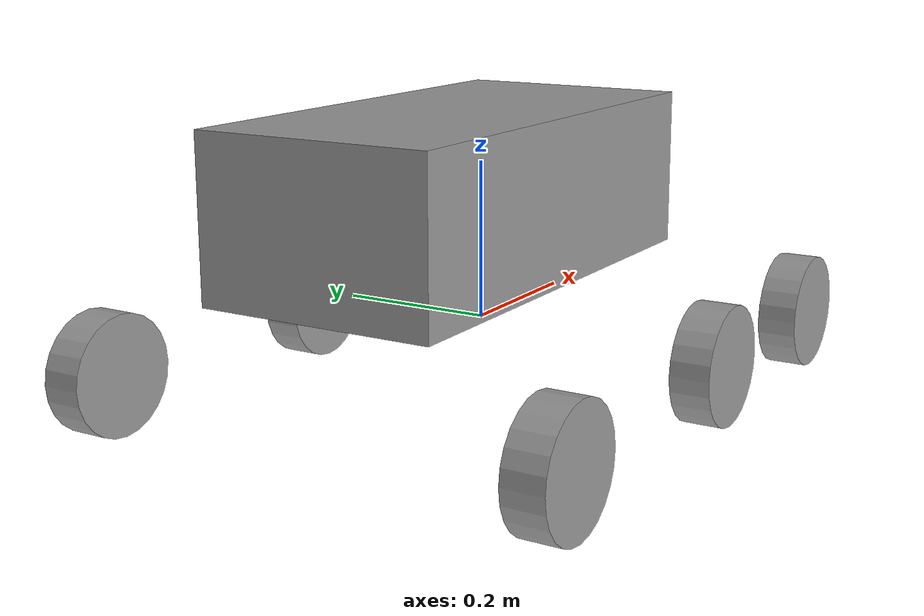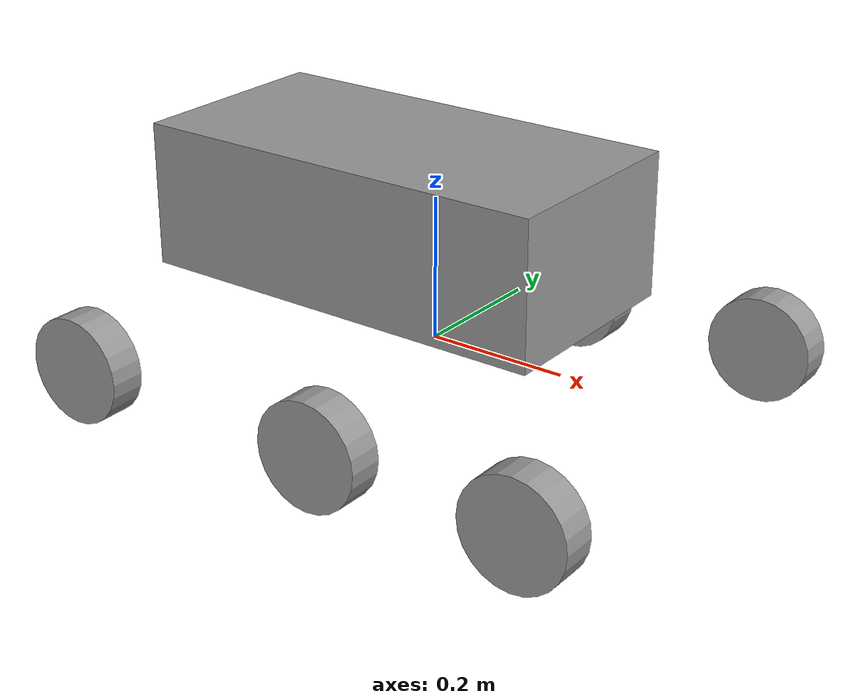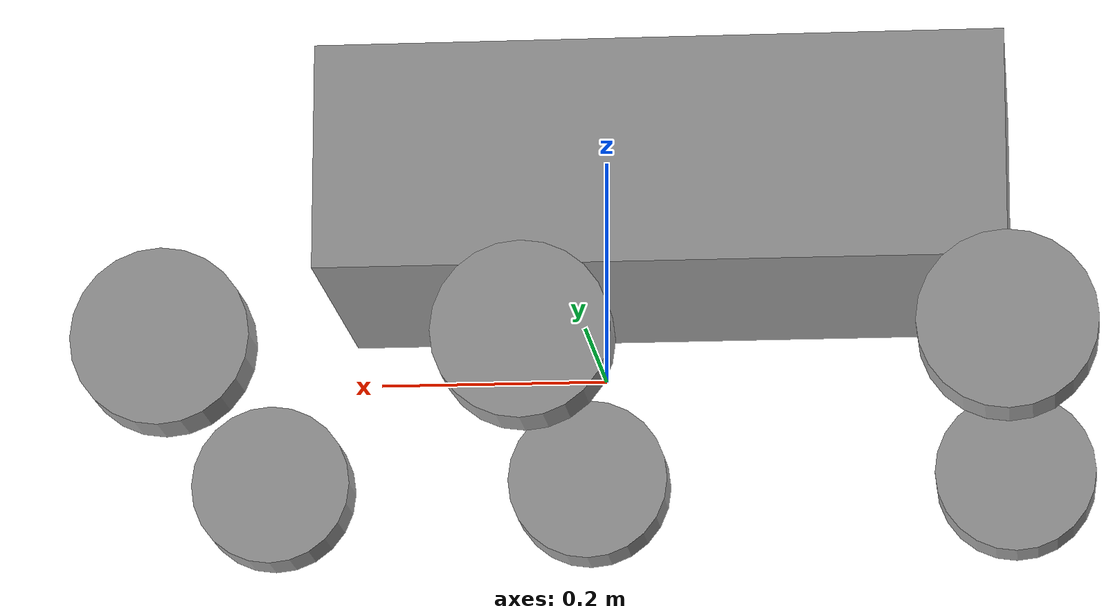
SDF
<?xml version='1.0'?>
<sdf version='1.7'>
  <model name='trialrover'>
    <link name='link_0'>
      <inertial>
        <mass>5.77341</mass>
        <inertia>
          <ixx>0.962235</ixx>
          <ixy>0</ixy>
          <ixz>0</ixz>
          <iyy>16.5181</iyy>
          <iyz>0</iyz>
          <izz>16.5181</izz>
        </inertia>
        <pose>0 0 0 0 -0 0</pose>
      </inertial>
      <pose>-0.057143 -0.000149 0.171429 0 -0 0</pose>
      <gravity>1</gravity>
      <self_collide>0</self_collide>
      <kinematic>0</kinematic>
      <enable_wind>0</enable_wind>
      <visual name='visual'>
        <pose>0 0 0 0 -0 0</pose>
        <geometry>
          <box>
            <size>0.6 0.3 0.2</size>
          </box>
        </geometry>
        <material>
          <lighting>1</lighting>
          <script>
            <uri>file://media/materials/scripts/gazebo.material</uri>
            <name>Gazebo/Grey</name>
          </script>
          <shader type='pixel'>
            <normal_map>__default__</normal_map>
          </shader>
          <ambient>0.3 0.3 0.3 1</ambient>
          <diffuse>0.7 0.7 0.7 1</diffuse>
          <specular>0.01 0.01 0.01 1</specular>
          <emissive>0 0 0 1</emissive>
        </material>
        <transparency>0</transparency>
        <cast_shadows>1</cast_shadows>
      </visual>
      <collision name='collision'>
        <laser_retro>0</laser_retro>
        <max_contacts>10</max_contacts>
        <pose>0 0 0 0 -0 0</pose>
        <geometry>
          <box>
            <size>0.6 0.3 0.2</size>
          </box>
        </geometry>
        <surface>
          <friction>
            <ode>
              <mu>1</mu>
              <mu2>1</mu2>
              <fdir1>0 0 0</fdir1>
              <slip1>0</slip1>
              <slip2>0</slip2>
            </ode>
            <torsional>
              <coefficient>1</coefficient>
              <patch_radius>0</patch_radius>
              <surface_radius>0</surface_radius>
              <use_patch_radius>1</use_patch_radius>
              <ode>
                <slip>0</slip>
              </ode>
            </torsional>
          </friction>
          <bounce>
            <restitution_coefficient>0</restitution_coefficient>
            <threshold>1e+06</threshold>
          </bounce>
          <contact>
            <collide_without_contact>0</collide_without_contact>
            <collide_without_contact_bitmask>1</collide_without_contact_bitmask>
            <collide_bitmask>1</collide_bitmask>
            <ode>
              <soft_cfm>0</soft_cfm>
              <soft_erp>0.2</soft_erp>
              <kp>1e+13</kp>
              <kd>1</kd>
              <max_vel>0.01</max_vel>
              <min_depth>0</min_depth>
            </ode>
            <bullet>
              <split_impulse>1</split_impulse>
              <split_impulse_penetration_threshold>-0.01</split_impulse_penetration_threshold>
              <soft_cfm>0</soft_cfm>
              <soft_erp>0.2</soft_erp>
              <kp>1e+13</kp>
              <kd>1</kd>
            </bullet>
          </contact>
        </surface>
      </collision>
    </link>
    <link name='link_1'>
      <inertial>
        <mass>1</mass>
        <inertia>
          <ixx>0.145833</ixx>
          <ixy>0</ixy>
          <ixz>0</ixz>
          <iyy>0.145833</iyy>
          <iyz>0</iyz>
          <izz>0.125</izz>
        </inertia>
        <pose>0 0 0 0 -0 0</pose>
      </inertial>
      <pose>0.342857 -0.300149 -0.028571 1.5707 -0 0</pose>
      <gravity>1</gravity>
      <self_collide>0</self_collide>
      <kinematic>0</kinematic>
      <enable_wind>0</enable_wind>
      <visual name='visual'>
        <pose>0 0 0 0 -0 0</pose>
        <geometry>
          <cylinder>
            <radius>0.075</radius>
            <length>0.05</length>
          </cylinder>
        </geometry>
        <material>
          <lighting>1</lighting>
          <script>
            <uri>file://media/materials/scripts/gazebo.material</uri>
            <name>Gazebo/Grey</name>
          </script>
          <shader type='pixel'>
            <normal_map>__default__</normal_map>
          </shader>
          <ambient>0.3 0.3 0.3 1</ambient>
          <diffuse>0.7 0.7 0.7 1</diffuse>
          <specular>0.01 0.01 0.01 1</specular>
          <emissive>0 0 0 1</emissive>
        </material>
        <transparency>0</transparency>
        <cast_shadows>1</cast_shadows>
      </visual>
      <collision name='collision'>
        <laser_retro>0</laser_retro>
        <max_contacts>10</max_contacts>
        <pose>0 0 0 0 -0 0</pose>
        <geometry>
          <cylinder>
            <radius>0.075</radius>
            <length>0.05</length>
          </cylinder>
        </geometry>
        <surface>
          <friction>
            <ode>
              <mu>1</mu>
              <mu2>1</mu2>
              <fdir1>0 0 0</fdir1>
              <slip1>0</slip1>
              <slip2>0</slip2>
            </ode>
            <torsional>
              <coefficient>1</coefficient>
              <patch_radius>0</patch_radius>
              <surface_radius>0</surface_radius>
              <use_patch_radius>1</use_patch_radius>
              <ode>
                <slip>0</slip>
              </ode>
            </torsional>
          </friction>
          <bounce>
            <restitution_coefficient>0</restitution_coefficient>
            <threshold>1e+06</threshold>
          </bounce>
          <contact>
            <collide_without_contact>0</collide_without_contact>
            <collide_without_contact_bitmask>1</collide_without_contact_bitmask>
            <collide_bitmask>1</collide_bitmask>
            <ode>
              <soft_cfm>0</soft_cfm>
              <soft_erp>0.2</soft_erp>
              <kp>1e+13</kp>
              <kd>1</kd>
              <max_vel>0.01</max_vel>
              <min_depth>0</min_depth>
            </ode>
            <bullet>
              <split_impulse>1</split_impulse>
              <split_impulse_penetration_threshold>-0.01</split_impulse_penetration_threshold>
              <soft_cfm>0</soft_cfm>
              <soft_erp>0.2</soft_erp>
              <kp>1e+13</kp>
              <kd>1</kd>
            </bullet>
          </contact>
        </surface>
      </collision>
    </link>
    <link name='link_1_clone'>
      <inertial>
        <mass>1</mass>
        <inertia>
          <ixx>0.145833</ixx>
          <ixy>0</ixy>
          <ixz>0</ixz>
          <iyy>0.145833</iyy>
          <iyz>0</iyz>
          <izz>0.125</izz>
        </inertia>
        <pose>0 0 0 0 -0 0</pose>
      </inertial>
      <pose>0.342857 0.299851 -0.028571 1.5707 -0 0</pose>
      <gravity>1</gravity>
      <self_collide>0</self_collide>
      <kinematic>0</kinematic>
      <enable_wind>0</enable_wind>
      <visual name='visual'>
        <pose>0 0 0 0 -0 0</pose>
        <geometry>
          <cylinder>
            <radius>0.075</radius>
            <length>0.05</length>
          </cylinder>
        </geometry>
        <material>
          <lighting>1</lighting>
          <script>
            <uri>file://media/materials/scripts/gazebo.material</uri>
            <name>Gazebo/Grey</name>
          </script>
          <shader type='pixel'>
            <normal_map>__default__</normal_map>
          </shader>
          <ambient>0.3 0.3 0.3 1</ambient>
          <diffuse>0.7 0.7 0.7 1</diffuse>
          <specular>0.01 0.01 0.01 1</specular>
          <emissive>0 0 0 1</emissive>
        </material>
        <transparency>0</transparency>
        <cast_shadows>1</cast_shadows>
      </visual>
      <collision name='collision'>
        <laser_retro>0</laser_retro>
        <max_contacts>10</max_contacts>
        <pose>0 0 0 0 -0 0</pose>
        <geometry>
          <cylinder>
            <radius>0.075</radius>
            <length>0.05</length>
          </cylinder>
        </geometry>
        <surface>
          <friction>
            <ode>
              <mu>1</mu>
              <mu2>1</mu2>
              <fdir1>0 0 0</fdir1>
              <slip1>0</slip1>
              <slip2>0</slip2>
            </ode>
            <torsional>
              <coefficient>1</coefficient>
              <patch_radius>0</patch_radius>
              <surface_radius>0</surface_radius>
              <use_patch_radius>1</use_patch_radius>
              <ode>
                <slip>0</slip>
              </ode>
            </torsional>
          </friction>
          <bounce>
            <restitution_coefficient>0</restitution_coefficient>
            <threshold>1e+06</threshold>
          </bounce>
          <contact>
            <collide_without_contact>0</collide_without_contact>
            <collide_without_contact_bitmask>1</collide_without_contact_bitmask>
            <collide_bitmask>1</collide_bitmask>
            <ode>
              <soft_cfm>0</soft_cfm>
              <soft_erp>0.2</soft_erp>
              <kp>1e+13</kp>
              <kd>1</kd>
              <max_vel>0.01</max_vel>
              <min_depth>0</min_depth>
            </ode>
            <bullet>
              <split_impulse>1</split_impulse>
              <split_impulse_penetration_threshold>-0.01</split_impulse_penetration_threshold>
              <soft_cfm>0</soft_cfm>
              <soft_erp>0.2</soft_erp>
              <kp>1e+13</kp>
              <kd>1</kd>
            </bullet>
          </contact>
        </surface>
      </collision>
    </link>
    <link name='link_1_clone_clone'>
      <inertial>
        <mass>1</mass>
        <inertia>
          <ixx>0.145833</ixx>
          <ixy>0</ixy>
          <ixz>0</ixz>
          <iyy>0.145833</iyy>
          <iyz>0</iyz>
          <izz>0.125</izz>
        </inertia>
        <pose>0 0 0 0 -0 0</pose>
      </inertial>
      <pose>-0.357143 0.300894 -0.028571 1.5707 -0 0</pose>
      <gravity>1</gravity>
      <self_collide>0</self_collide>
      <kinematic>0</kinematic>
      <enable_wind>0</enable_wind>
      <visual name='visual'>
        <pose>0 0 0 0 -0 0</pose>
        <geometry>
          <cylinder>
            <radius>0.075</radius>
            <length>0.05</length>
          </cylinder>
        </geometry>
        <material>
          <lighting>1</lighting>
          <script>
            <uri>file://media/materials/scripts/gazebo.material</uri>
            <name>Gazebo/Grey</name>
          </script>
          <shader type='pixel'>
            <normal_map>__default__</normal_map>
          </shader>
          <ambient>0.3 0.3 0.3 1</ambient>
          <diffuse>0.7 0.7 0.7 1</diffuse>
          <specular>0.01 0.01 0.01 1</specular>
          <emissive>0 0 0 1</emissive>
        </material>
        <transparency>0</transparency>
        <cast_shadows>1</cast_shadows>
      </visual>
      <collision name='collision'>
        <laser_retro>0</laser_retro>
        <max_contacts>10</max_contacts>
        <pose>0 0 0 0 -0 0</pose>
        <geometry>
          <cylinder>
            <radius>0.075</radius>
            <length>0.05</length>
          </cylinder>
        </geometry>
        <surface>
          <friction>
            <ode>
              <mu>1</mu>
              <mu2>1</mu2>
              <fdir1>0 0 0</fdir1>
              <slip1>0</slip1>
              <slip2>0</slip2>
            </ode>
            <torsional>
              <coefficient>1</coefficient>
              <patch_radius>0</patch_radius>
              <surface_radius>0</surface_radius>
              <use_patch_radius>1</use_patch_radius>
              <ode>
                <slip>0</slip>
              </ode>
            </torsional>
          </friction>
          <bounce>
            <restitution_coefficient>0</restitution_coefficient>
            <threshold>1e+06</threshold>
          </bounce>
          <contact>
            <collide_without_contact>0</collide_without_contact>
            <collide_without_contact_bitmask>1</collide_without_contact_bitmask>
            <collide_bitmask>1</collide_bitmask>
            <ode>
              <soft_cfm>0</soft_cfm>
              <soft_erp>0.2</soft_erp>
              <kp>1e+13</kp>
              <kd>1</kd>
              <max_vel>0.01</max_vel>
              <min_depth>0</min_depth>
            </ode>
            <bullet>
              <split_impulse>1</split_impulse>
              <split_impulse_penetration_threshold>-0.01</split_impulse_penetration_threshold>
              <soft_cfm>0</soft_cfm>
              <soft_erp>0.2</soft_erp>
              <kp>1e+13</kp>
              <kd>1</kd>
            </bullet>
          </contact>
        </surface>
      </collision>
    </link>
    <link name='link_1_clone_clone_0'>
      <inertial>
        <mass>1</mass>
        <inertia>
          <ixx>0.145833</ixx>
          <ixy>0</ixy>
          <ixz>0</ixz>
          <iyy>0.145833</iyy>
          <iyz>0</iyz>
          <izz>0.125</izz>
        </inertia>
        <pose>0 0 0 0 -0 0</pose>
      </inertial>
      <pose>-0.357143 -0.300149 -0.028571 1.5707 -0 0</pose>
      <gravity>1</gravity>
      <self_collide>0</self_collide>
      <kinematic>0</kinematic>
      <enable_wind>0</enable_wind>
      <visual name='visual'>
        <pose>0 0 0 0 -0 0</pose>
        <geometry>
          <cylinder>
            <radius>0.075</radius>
            <length>0.05</length>
          </cylinder>
        </geometry>
        <material>
          <lighting>1</lighting>
          <script>
            <uri>file://media/materials/scripts/gazebo.material</uri>
            <name>Gazebo/Grey</name>
          </script>
          <shader type='pixel'>
            <normal_map>__default__</normal_map>
          </shader>
          <ambient>0.3 0.3 0.3 1</ambient>
          <diffuse>0.7 0.7 0.7 1</diffuse>
          <specular>0.01 0.01 0.01 1</specular>
          <emissive>0 0 0 1</emissive>
        </material>
        <transparency>0</transparency>
        <cast_shadows>1</cast_shadows>
      </visual>
      <collision name='collision'>
        <laser_retro>0</laser_retro>
        <max_contacts>10</max_contacts>
        <pose>0 0 0 0 -0 0</pose>
        <geometry>
          <cylinder>
            <radius>0.075</radius>
            <length>0.05</length>
          </cylinder>
        </geometry>
        <surface>
          <friction>
            <ode>
              <mu>1</mu>
              <mu2>1</mu2>
              <fdir1>0 0 0</fdir1>
              <slip1>0</slip1>
              <slip2>0</slip2>
            </ode>
            <torsional>
              <coefficient>1</coefficient>
              <patch_radius>0</patch_radius>
              <surface_radius>0</surface_radius>
              <use_patch_radius>1</use_patch_radius>
              <ode>
                <slip>0</slip>
              </ode>
            </torsional>
          </friction>
          <bounce>
            <restitution_coefficient>0</restitution_coefficient>
            <threshold>1e+06</threshold>
          </bounce>
          <contact>
            <collide_without_contact>0</collide_without_contact>
            <collide_without_contact_bitmask>1</collide_without_contact_bitmask>
            <collide_bitmask>1</collide_bitmask>
            <ode>
              <soft_cfm>0</soft_cfm>
              <soft_erp>0.2</soft_erp>
              <kp>1e+13</kp>
              <kd>1</kd>
              <max_vel>0.01</max_vel>
              <min_depth>0</min_depth>
            </ode>
            <bullet>
              <split_impulse>1</split_impulse>
              <split_impulse_penetration_threshold>-0.01</split_impulse_penetration_threshold>
              <soft_cfm>0</soft_cfm>
              <soft_erp>0.2</soft_erp>
              <kp>1e+13</kp>
              <kd>1</kd>
            </bullet>
          </contact>
        </surface>
      </collision>
    </link>
    <link name='link_1_clone_clone_1'>
      <inertial>
        <mass>1</mass>
        <inertia>
          <ixx>0.145833</ixx>
          <ixy>0</ixy>
          <ixz>0</ixz>
          <iyy>0.145833</iyy>
          <iyz>0</iyz>
          <izz>0.125</izz>
        </inertia>
        <pose>0 0 0 0 -0 0</pose>
      </inertial>
      <pose>0.042857 0.299851 -0.028571 1.5707 -0 0</pose>
      <gravity>1</gravity>
      <self_collide>0</self_collide>
      <kinematic>0</kinematic>
      <enable_wind>0</enable_wind>
      <visual name='visual'>
        <pose>0 0 0 0 -0 0</pose>
        <geometry>
          <cylinder>
            <radius>0.075</radius>
            <length>0.05</length>
          </cylinder>
        </geometry>
        <material>
          <lighting>1</lighting>
          <script>
            <uri>file://media/materials/scripts/gazebo.material</uri>
            <name>Gazebo/Grey</name>
          </script>
          <shader type='pixel'>
            <normal_map>__default__</normal_map>
          </shader>
          <ambient>0.3 0.3 0.3 1</ambient>
          <diffuse>0.7 0.7 0.7 1</diffuse>
          <specular>0.01 0.01 0.01 1</specular>
          <emissive>0 0 0 1</emissive>
        </material>
        <transparency>0</transparency>
        <cast_shadows>1</cast_shadows>
      </visual>
      <collision name='collision'>
        <laser_retro>0</laser_retro>
        <max_contacts>10</max_contacts>
        <pose>0 0 0 0 -0 0</pose>
        <geometry>
          <cylinder>
            <radius>0.075</radius>
            <length>0.05</length>
          </cylinder>
        </geometry>
        <surface>
          <friction>
            <ode>
              <mu>1</mu>
              <mu2>1</mu2>
              <fdir1>0 0 0</fdir1>
              <slip1>0</slip1>
              <slip2>0</slip2>
            </ode>
            <torsional>
              <coefficient>1</coefficient>
              <patch_radius>0</patch_radius>
              <surface_radius>0</surface_radius>
              <use_patch_radius>1</use_patch_radius>
              <ode>
                <slip>0</slip>
              </ode>
            </torsional>
          </friction>
          <bounce>
            <restitution_coefficient>0</restitution_coefficient>
            <threshold>1e+06</threshold>
          </bounce>
          <contact>
            <collide_without_contact>0</collide_without_contact>
            <collide_without_contact_bitmask>1</collide_without_contact_bitmask>
            <collide_bitmask>1</collide_bitmask>
            <ode>
              <soft_cfm>0</soft_cfm>
              <soft_erp>0.2</soft_erp>
              <kp>1e+13</kp>
              <kd>1</kd>
              <max_vel>0.01</max_vel>
              <min_depth>0</min_depth>
            </ode>
            <bullet>
              <split_impulse>1</split_impulse>
              <split_impulse_penetration_threshold>-0.01</split_impulse_penetration_threshold>
              <soft_cfm>0</soft_cfm>
              <soft_erp>0.2</soft_erp>
              <kp>1e+13</kp>
              <kd>1</kd>
            </bullet>
          </contact>
        </surface>
      </collision>
    </link>
    <link name='link_1_clone_clone_1_clone'>
      <inertial>
        <mass>1</mass>
        <inertia>
          <ixx>0.145833</ixx>
          <ixy>0</ixy>
          <ixz>0</ixz>
          <iyy>0.145833</iyy>
          <iyz>0</iyz>
          <izz>0.125</izz>
        </inertia>
        <pose>0 0 0 0 -0 0</pose>
      </inertial>
      <pose>0.042857 -0.300149 -0.028571 1.5707 -0 0</pose>
      <gravity>1</gravity>
      <self_collide>0</self_collide>
      <kinematic>0</kinematic>
      <enable_wind>0</enable_wind>
      <visual name='visual'>
        <pose>0 0 0 0 -0 0</pose>
        <geometry>
          <cylinder>
            <radius>0.075</radius>
            <length>0.05</length>
          </cylinder>
        </geometry>
        <material>
          <lighting>1</lighting>
          <script>
            <uri>file://media/materials/scripts/gazebo.material</uri>
            <name>Gazebo/Grey</name>
          </script>
          <shader type='pixel'>
            <normal_map>__default__</normal_map>
          </shader>
          <ambient>0.3 0.3 0.3 1</ambient>
          <diffuse>0.7 0.7 0.7 1</diffuse>
          <specular>0.01 0.01 0.01 1</specular>
          <emissive>0 0 0 1</emissive>
        </material>
        <transparency>0</transparency>
        <cast_shadows>1</cast_shadows>
      </visual>
      <collision name='collision'>
        <laser_retro>0</laser_retro>
        <max_contacts>10</max_contacts>
        <pose>0 0 0 0 -0 0</pose>
        <geometry>
          <cylinder>
            <radius>0.075</radius>
            <length>0.05</length>
          </cylinder>
        </geometry>
        <surface>
          <friction>
            <ode>
              <mu>1</mu>
              <mu2>1</mu2>
              <fdir1>0 0 0</fdir1>
              <slip1>0</slip1>
              <slip2>0</slip2>
            </ode>
            <torsional>
              <coefficient>1</coefficient>
              <patch_radius>0</patch_radius>
              <surface_radius>0</surface_radius>
              <use_patch_radius>1</use_patch_radius>
              <ode>
                <slip>0</slip>
              </ode>
            </torsional>
          </friction>
          <bounce>
            <restitution_coefficient>0</restitution_coefficient>
            <threshold>1e+06</threshold>
          </bounce>
          <contact>
            <collide_without_contact>0</collide_without_contact>
            <collide_without_contact_bitmask>1</collide_without_contact_bitmask>
            <collide_bitmask>1</collide_bitmask>
            <ode>
              <soft_cfm>0</soft_cfm>
              <soft_erp>0.2</soft_erp>
              <kp>1e+13</kp>
              <kd>1</kd>
              <max_vel>0.01</max_vel>
              <min_depth>0</min_depth>
            </ode>
            <bullet>
              <split_impulse>1</split_impulse>
              <split_impulse_penetration_threshold>-0.01</split_impulse_penetration_threshold>
              <soft_cfm>0</soft_cfm>
              <soft_erp>0.2</soft_erp>
              <kp>1e+13</kp>
              <kd>1</kd>
            </bullet>
          </contact>
        </surface>
      </collision>
    </link>
    <static>0</static>
    <allow_auto_disable>1</allow_auto_disable>
  </model>
</sdf>
